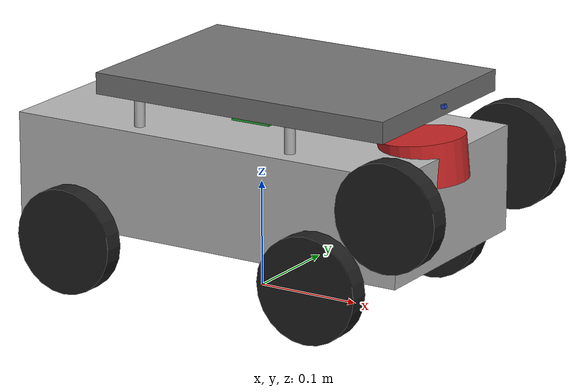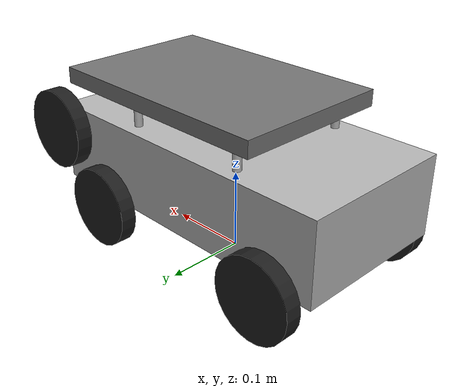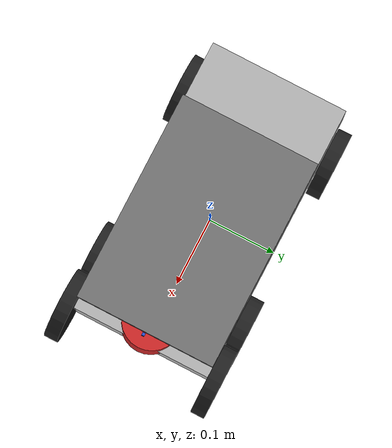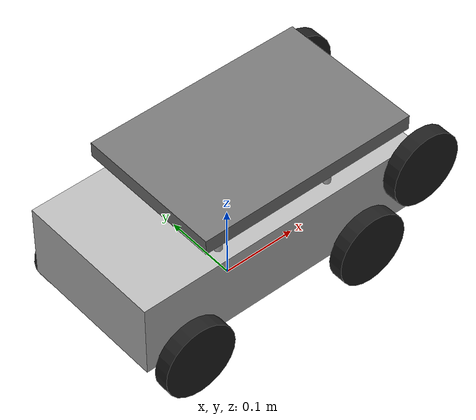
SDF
<?xml version="1.0" ?>

<sdf version="1.5">
  <!-- http://sdformat.org/spec?elem=sensor&ver=1.5 -->
  <model name="tankbot">
    <link name="chassis">
      <pose>0 0 0.11 0 0 0</pose>
      <inertial>
        <pose>0.04650000000000001 0 0  0 0 0</pose>
        <mass>3.0</mass>
        <inertia>
          <ixx>0.012592666666666665</ixx>
          <iyy>0.04085416666666667</iyy>
          <izz>0.043813500000000005</izz>
          <ixy>0</ixy>
          <ixz>0</ixz>
          <iyz>0</iyz>
        </inertia>
      </inertial>
      <collision name="collision">
        <geometry>
          <box>
            <size>0.4 0.2 0.1</size>
          </box>
        </geometry>
      </collision>
      <visual name="visual">
        <geometry>
          <box>
            <size>0.4 0.2 0.1</size>
          </box>
        </geometry>
        <material>
          <script>
            <uri>file://media/materials/scripts/gazebo.material</uri>
            <ambient>0.46 0.46 0.46 1.0</ambient>
  		<diffuse>0.46 0.46 0.46 1.0</diffuse>
  		<specular>0.46 0.46 0.46 1.0</specular>
  		<emissive>0.46 0.46 0.46 1.0</emissive>
          </script>
        </material>
      </visual>
    </link>

    <link name="boarder">
        <pose>0.03650000000000001 0.0 0.2 0.0 0.0 0.0</pose>
        <inertial>
        <mass>0.15</mass>
        <inertia>
          <ixx>0.00018958333333333338</ixx>
          <iyy>0.00018958333333333338</iyy>
          <izz>0.00031250000000000006</izz>
          <ixy>0</ixy>
          <ixz>0</ixz>
          <iyz>0</iyz>
        </inertia>
      </inertial>
        <collision name="boarder">
          <geometry>
            <box>
              <size>0.3 0.2 .02</size>
            </box>
          </geometry>
        </collision>

        <visual name="visual">
          <geometry>
            <box>
              <size>0.3 0.2 .02</size>
            </box>
          </geometry>
           <material>
             <ambient>0.46 0.46 0.46 1.0</ambient>
             <diffuse>0.46 0.46 0.46 1.0</diffuse>
             <specular>0.46 0.46 0.46 1.0</specular>
             <emissive>0.46 0.46 0.46 1.0</emissive>
           </material>
        </visual>
      </link>
      <joint name="boarder_joint" type="fixed">
        <child>boarder</child>
        <parent>chassis</parent>
      </joint>

    <link name="wheel_fl">
      <pose>
        0.12 0.1100000000000002 0.05 -1.5707963267948966 0 0
      </pose>
      <inertial>
        <mass>0.25</mass>
        <inertia>
          <ixx>0.00018958333333333338</ixx>
          <iyy>0.00018958333333333338</iyy>
          <izz>0.00031250000000000006</izz>
          <ixy>0</ixy>
          <ixz>0</ixz>
          <iyz>0</iyz>
        </inertia>
      </inertial>
      <collision name="collision">
        <geometry>
          <cylinder>
            <radius>0.05</radius>
            <length>0.02</length>
          </cylinder>
        </geometry>
      </collision>
      <visual name="wheel_fl">
        <geometry>
          <cylinder>
            <radius>0.05</radius>
            <length>0.02</length>
          </cylinder>
        </geometry>
        <material>
          <script>
            <uri>file://media/materials/scripts/gazebo.material</uri>
            <name>Gazebo/Black</name>
          </script>
        </material>
      </visual>
    </link>

    <joint name="wheel_fl_drive" type="revolute">
      <parent>chassis</parent>
      <child>wheel_fl</child>
      <axis>
        <xyz>0 0 1</xyz>
      </axis>
    </joint>

    <link name="wheel_fl2">
      <pose>
        0.2 0.1100000000000002 0.13 -1.5707963267948966 0 0
      </pose>
      <inertial>
        <mass>0.25</mass>
        <inertia>
          <ixx>0.00018958333333333338</ixx>
          <iyy>0.00018958333333333338</iyy>
          <izz>0.00031250000000000006</izz>
          <ixy>0</ixy>
          <ixz>0</ixz>
          <iyz>0</iyz>
        </inertia>
      </inertial>
      <collision name="collision">
        <geometry>
          <cylinder>
            <radius>0.05</radius>
            <length>0.02</length>
          </cylinder>
        </geometry>
      </collision>
      <visual name="visual">
        <geometry>
          <cylinder>
            <radius>0.05</radius>
            <length>0.02</length>
          </cylinder>
        </geometry>
        <material>
          <script>
            <uri>file://media/materials/scripts/gazebo.material</uri>
            <name>Gazebo/Black</name>
          </script>
        </material>
      </visual>
    </link>

    <joint name="wheel_fl2_drive" type="revolute">
      <parent>chassis</parent>
      <child>wheel_fl2</child>
      <axis>
        <xyz>0 0 1</xyz>
      </axis>
    </joint>

    <link name="boardleg_rr">
        <pose>-0.08 -0.08 0.18 0.0 0.0 0.0</pose>
        <collision name="collision">
          <geometry>
            <cylinder>
              <radius>.005</radius>
              <length>.04</length>
            </cylinder>
          </geometry>
        </collision>

        <visual name="visual">
          <geometry>
            <cylinder>
              <radius>.005</radius>
              <length>.04</length>
            </cylinder>
          </geometry>
        </visual>
      </link>
      <joint name="leg_rr_joint" type="fixed">
        <child>boardleg_rr</child>
        <parent>boarder</parent>
      </joint>

          <link name="boardleg_rl">
        <pose>-0.08 0.08 0.18 0.0 0.0 0.0</pose>
        <collision name="collision">
          <geometry>
            <cylinder>
              <radius>.005</radius>
              <length>.04</length>
            </cylinder>
          </geometry>
        </collision>

        <visual name="visual">
          <geometry>
            <cylinder>
              <radius>.005</radius>
              <length>.04</length>
            </cylinder>
          </geometry>
        </visual>
      </link>
      <joint name="leg_rl_joint" type="fixed">
        <child>boardleg_rl</child>
        <parent>boarder</parent>
      </joint>

                <link name="boardleg_fl">
        <pose>0.08 0.08 0.18 0.0 0.0 0.0</pose>
        <collision name="collision">
          <geometry>
            <cylinder>
              <radius>.005</radius>
              <length>.04</length>
            </cylinder>
          </geometry>
        </collision>

        <visual name="visual">
          <geometry>
            <cylinder>
              <radius>.005</radius>
              <length>.04</length>
            </cylinder>
          </geometry>
        </visual>
      </link>
      <joint name="leg_fl_joint" type="fixed">
        <child>boardleg_fl</child>
        <parent>boarder</parent>
      </joint>

                <link name="boardleg_fr">
        <pose>0.08 -0.08 0.18 0.0 0.0 0.0</pose>
        <collision name="collision">
          <geometry>
            <cylinder>
              <radius>.005</radius>
              <length>.04</length>
            </cylinder>
          </geometry>
        </collision>

        <visual name="visual">
          <geometry>
            <cylinder>
              <radius>.005</radius>
              <length>.04</length>
            </cylinder>
          </geometry>
        </visual>
      </link>
      <joint name="leg_fr_joint" type="fixed">
        <child>boardleg_fr</child>
        <parent>boarder</parent>
      </joint>

    <link name="wheel_fr">
      <pose>
        0.12 -0.1100000000000002 0.05 -1.5707963267948966 0 0
      </pose>
      <inertial>
        <mass>0.25</mass>
        <inertia>
          <ixx>0.00018958333333333338</ixx>
          <iyy>0.00018958333333333338</iyy>
          <izz>0.00031250000000000006</izz>
          <ixy>0</ixy>
          <ixz>0</ixz>
          <iyz>0</iyz>
        </inertia>
      </inertial>
      <collision name="collision">
        <geometry>
          <cylinder>
            <radius>0.05</radius>
            <length>0.02</length>
          </cylinder>
        </geometry>
      </collision>
      <visual name="visual">
        <geometry>
          <cylinder>
            <radius>0.05</radius>
            <length>0.02</length>
          </cylinder>
        </geometry>
        <material>
          <script>
            <uri>file://media/materials/scripts/gazebo.material</uri>
            <name>Gazebo/Black</name>
          </script>
        </material>
      </visual>
    </link>

    <joint name="wheel_fr_drive" type="revolute">
      <parent>chassis</parent>
      <child>wheel_fr</child>
      <axis>
        <xyz>0 0 1</xyz>
      </axis>
    </joint>

    <link name="wheel_fr2">
      <pose>
        0.2 -0.1100000000000002 0.13 -1.5707963267948966 0 0
      </pose>
      <inertial>
        <mass>0.25</mass>
        <inertia>
          <ixx>0.00018958333333333338</ixx>
          <iyy>0.00018958333333333338</iyy>
          <izz>0.00031250000000000006</izz>
          <ixy>0</ixy>
          <ixz>0</ixz>
          <iyz>0</iyz>
        </inertia>
      </inertial>
      <collision name="collision">
        <geometry>
          <cylinder>
            <radius>0.05</radius>
            <length>0.02</length>
          </cylinder>
        </geometry>
      </collision>
      <visual name="visual">
        <geometry>
          <cylinder>
            <radius>0.05</radius>
            <length>0.02</length>
          </cylinder>
        </geometry>
        <material>
          <script>
            <uri>file://media/materials/scripts/gazebo.material</uri>
            <name>Gazebo/Black</name>
          </script>
        </material>
      </visual>
    </link>

    <joint name="wheel_fr2_drive" type="revolute">
      <parent>chassis</parent>
      <child>wheel_fr2</child>
      <axis>
        <xyz>0 0 1</xyz>
      </axis>
    </joint>

    <link name="wheel_rl">
      <pose>
       -0.1395 0.11100000000000002 0.05 -1.5707963267948966 0 0
      </pose>
      <inertial>
        <mass>0.25</mass>
        <inertia>
          <ixx>0.00018958333333333338</ixx>
          <iyy>0.00018958333333333338</iyy>
          <izz>0.00031250000000000006</izz>
          <ixy>0</ixy>
          <ixz>0</ixz>
          <iyz>0</iyz>
        </inertia>
      </inertial>
      <collision name="collision">
        <geometry>
          <cylinder>
            <radius>0.05</radius>
            <length>0.02</length>
          </cylinder>
        </geometry>
      </collision>
      <visual name="visual">
        <geometry>
          <cylinder>
            <radius>0.05</radius>
            <length>0.02</length>
          </cylinder>
        </geometry>
        <material>
          <script>
            <uri>file://media/materials/scripts/gazebo.material</uri>
            <name>Gazebo/Black</name>
          </script>
        </material>
      </visual>
    </link>
    <joint name="wheel_rl_drive" type="revolute">
      <parent>chassis</parent>
      <child>wheel_rl</child>
      <axis>
        <xyz>0 0 1</xyz>
      </axis>
    </joint>

    <link name="wheel_rr">
      <pose>
       -0.1395 -0.1100000000000002 0.05 -1.5707963267948966 0 0
      </pose>
      <inertial>
        <mass>0.25</mass>
        <inertia>
          <ixx>0.00018958333333333338</ixx>
          <iyy>0.00018958333333333338</iyy>
          <izz>0.00031250000000000006</izz>
          <ixy>0</ixy>
          <ixz>0</ixz>
          <iyz>0</iyz>
        </inertia>
      </inertial>
      <collision name="collision">
        <geometry>
          <cylinder>
            <radius>0.05</radius>
            <length>0.02</length>
          </cylinder>
        </geometry>
      </collision>
      <visual name="visual">
        <geometry>
          <cylinder>
            <radius>0.05</radius>
            <length>0.02</length>
          </cylinder>
        </geometry>
        <material>
          <script>
            <uri>file://media/materials/scripts/gazebo.material</uri>
            <name>Gazebo/Black</name>
          </script>
        </material>
      </visual>
    </link>
    <joint name="wheel_rr_drive" type="revolute">
      <parent>chassis</parent>
      <child>wheel_rr</child>
      <axis>
        <xyz>0 0 1</xyz>
      </axis>
    </joint>

    <include>
      <uri>model://ultrasonic_sensor</uri>
      <pose>
        0.17 0.0 0.15
        0.0 -0.1 0.0
      </pose>
    </include>

    <joint name="sonar_joint" type="fixed">
      <child>ultrasonic_sensor::link</child>
      <parent>chassis</parent>
    </joint>

    <include>
      <uri>model://noisy_imu</uri>
      <pose>
        0.0 0.0 0.16
        0.0 0.0 0.0
      </pose>
    </include>

    <joint name="imu_joint" type="fixed">
      <child>imu::link</child>
      <parent>chassis</parent>
    </joint>

 <include>
      <uri>model://camera_sensor</uri>
      <pose>
        0.19 0.0 0.2
        0.0 -0.18 0.0
      </pose>
    </include>

    <joint name="camera_joint" type="fixed">
      <child>camera_sensor::link</child>
      <parent>boarder</parent>
    </joint>

  </model>
</sdf>

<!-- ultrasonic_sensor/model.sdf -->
<sdf version="1.7">
  <model name="ultrasonic_sensor">
    <pose>0 0 0.02 0 0 0</pose>
    <link name="link">

      <inertial>
        <mass>0.1</mass>
      </inertial>

      <visual name="visual">
        <geometry>
          <cylinder>
            <radius>0.04</radius>
            <length>0.04</length>
          </cylinder>
        </geometry>
        <material>
          <script>
            <uri>file://media/materials/scripts/gazebo.material</uri>
            <name>Gazebo/Red</name>
          </script>
        </material>
      </visual>

      <collision name="collision-base">
        <pose>0 0 -0.0145 0 0 0</pose>
        <geometry>
          <box>
            <size>0.05 0.05 0.041</size>
          </box>
        </geometry>
      </collision>

      <collision name="collision-top">
        <pose>0 0 0.0205 0 0 0</pose>
        <geometry>
          <cylinder>
            <radius>0.021</radius>
            <length>0.029</length>
          </cylinder>
        </geometry>
      </collision>

      <sensor name="sonar" type="sonar">
        <pose>0.04 0 0 0 1.5 3.14</pose>
        <sonar>
          <min>0</min>
          <max>3</max>
          <radius>0.3</radius>
        </sonar>
        <plugin name="sonar" filename="libSonarPlugin.so" />
        <always_on>1</always_on>
        <update_rate>30</update_rate>
        <visualize>true</visualize>
      </sensor>

    </link>
  </model>
</sdf>

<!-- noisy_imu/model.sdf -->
<sdf version="1.6">
  <model name="imu">
    <link name="link">
      <inertial>
        <mass>0.05</mass>
      </inertial>
      <visual name="visual">
        <geometry>
          <box>
            <size>0.04 0.04 0.04</size>
          </box>
        </geometry>
        <material>
          <script>
            <uri>file://media/materials/scripts/gazebo.material</uri>
            <name>Gazebo/Green</name>
          </script>
        </material>
      </visual>
      <collision name="collision">
        <geometry>
          <box>
            <size>0.04 0.04 0.04</size>
          </box>
        </geometry>
      </collision>
      <sensor name="imu" type="imu">
        <imu>
          <angular_velocity>
            <x>
              <noise type="gaussian">
                <mean>0.0</mean>
                <stddev>2e-4</stddev>
                <bias_mean>0.0000075</bias_mean>
                <bias_stddev>0.0000008</bias_stddev>
              </noise>
            </x>
            <y>
              <noise type="gaussian">
                <mean>0.0</mean>
                <stddev>2e-4</stddev>
                <bias_mean>0.0000075</bias_mean>
                <bias_stddev>0.0000008</bias_stddev>
              </noise>
            </y>
            <z>
              <noise type="gaussian">
                <mean>0.0</mean>
                <stddev>2e-4</stddev>
                <bias_mean>0.0000075</bias_mean>
                <bias_stddev>0.0000008</bias_stddev>
              </noise>
            </z>
          </angular_velocity>
          <linear_acceleration>
            <x>
              <noise type="gaussian">
                <mean>0.0</mean>
                <stddev>1.7e-2</stddev>
                <bias_mean>0.1</bias_mean>
                <bias_stddev>0.001</bias_stddev>
              </noise>
            </x>
            <y>
              <noise type="gaussian">
                <mean>0.0</mean>
                <stddev>1.7e-2</stddev>
                <bias_mean>0.1</bias_mean>
                <bias_stddev>0.001</bias_stddev>
              </noise>
            </y>
            <z>
              <noise type="gaussian">
                <mean>0.0</mean>
                <stddev>1.7e-2</stddev>
                <bias_mean>0.1</bias_mean>
                <bias_stddev>0.001</bias_stddev>
              </noise>
            </z>
          </linear_acceleration>
        </imu>
        <always_on>1</always_on>
        <update_rate>30</update_rate>
      </sensor>
    </link>
  </model>
</sdf>

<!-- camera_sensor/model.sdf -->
<sdf version="1.6">
  <model name="camera_sensor">
    <pose>0 0 0.02 0 0 0</pose>
    <link name="link">
      <inertial>
        <mass>0.1</mass>
      </inertial>

      <visual name="visual">
        <geometry>
          <box>
            <size>0.004 0.004 0.004</size>
          </box>
        </geometry>
        <material>
          <script>
            <uri>file://media/materials/scripts/gazebo.material</uri>
            <name>Gazebo/Blue</name>
          </script>
        </material>
      </visual>

      <collision name="collision">
        <pose>0 0 -0.0145 0 0 0</pose>
        <geometry>
          <box>
            <size>0.004 0.004 0.004</size>
          </box>
        </geometry>
      </collision>

      <sensor name='camera' type='camera'>
        <camera>
          <horizontal_fov>1.3962634</horizontal_fov>
          <image>
            <width>800</width>
            <height>800</height>
          </image>
          <clip>
            <near>0.02</near>
            <far>300</far>
          </clip>
        </camera>
        <always_on>1</always_on>
        <update_rate>10</update_rate>
        <visualize>1</visualize>

        <plugin name="camera_controller" filename="libCameraPlugin.so"></plugin>
      </sensor>

    </link>
  </model>
</sdf>
